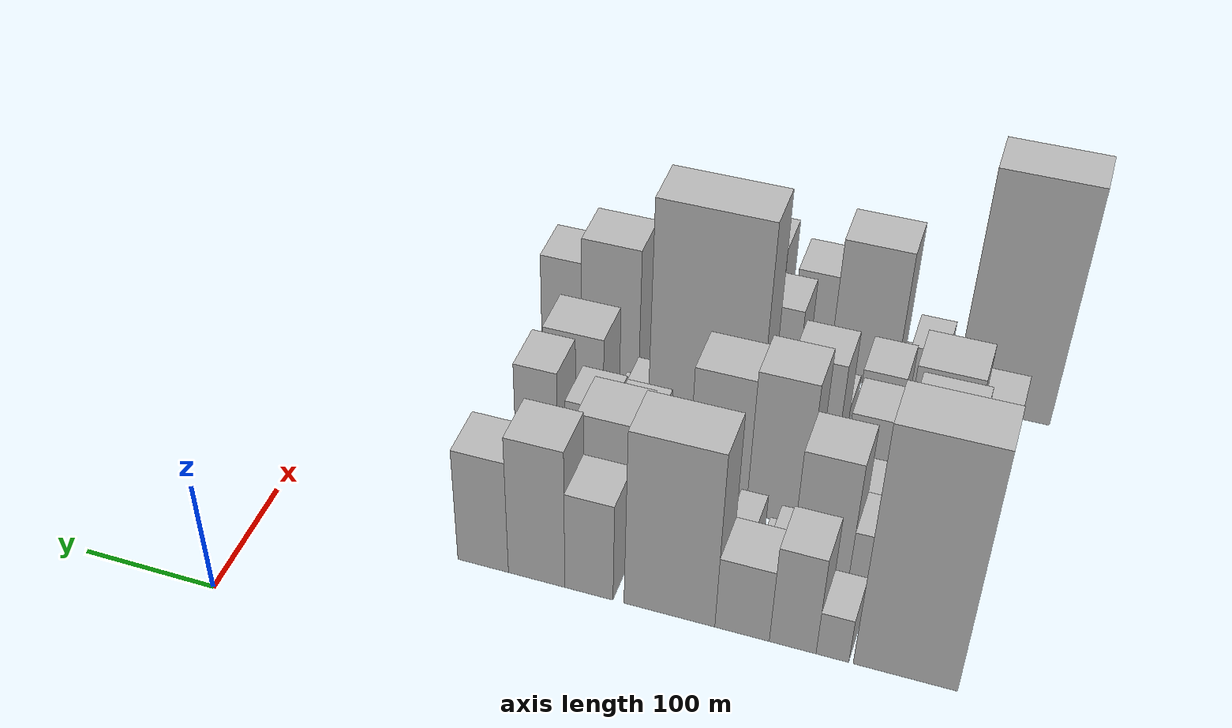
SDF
<sdf version="1.6">
 <world name="default">
  <model name="building_10">
   <static>1</static>
   <pose>100.0000 -470.8362 0 0.000000 0.000000 0.000000</pose>
   <link name="link">
    <pose>0 0 111.00 0 0 0</pose>
    <collision name="collision"><geometry><box><size>40.0000 70.0803 222.0000</size></box></geometry></collision>
    <visual name="visual">
     <cast_shadows>0</cast_shadows>
     <geometry><box><size>40.0000 70.0803 222.0000</size></box></geometry>
     <material>
      <script>
       <uri>model://HANNAS_wall/materials/scripts</uri>
       <uri>model://HANNAS_wall/materials/textures</uri>
       <name>vrc/HANNAS_wall</name>
      </script>
     </material>
    </visual>
   </link>
  </model>
  <model name="building_11">
   <static>1</static>
   <pose>100.0000 -421.5764 0 0.000000 0.000000 0.000000</pose>
   <link name="link">
    <pose>0 0 21.00 0 0 0</pose>
    <collision name="collision"><geometry><box><size>40.0000 22.4394 42.0000</size></box></geometry></collision>
    <visual name="visual">
     <cast_shadows>0</cast_shadows>
     <geometry><box><size>40.0000 22.4394 42.0000</size></box></geometry>
     <material>
      <script>
       <uri>model://HANNAS_wall/materials/scripts</uri>
       <uri>model://HANNAS_wall/materials/textures</uri>
       <name>vrc/HANNAS_wall</name>
      </script>
     </material>
    </visual>
   </link>
  </model>
  <model name="building_12">
   <static>1</static>
   <pose>100.0000 -394.1800 0 0.000000 0.000000 0.000000</pose>
   <link name="link">
    <pose>0 0 46.50 0 0 0</pose>
    <collision name="collision"><geometry><box><size>40.0000 32.3534 93.0000</size></box></geometry></collision>
    <visual name="visual">
     <cast_shadows>0</cast_shadows>
     <geometry><box><size>40.0000 32.3534 93.0000</size></box></geometry>
     <material>
      <script>
       <uri>model://HANNAS_wall/materials/scripts</uri>
       <uri>model://HANNAS_wall/materials/textures</uri>
       <name>vrc/HANNAS_wall</name>
      </script>
     </material>
    </visual>
   </link>
  </model>
  <model name="building_13">
   <static>1</static>
   <pose>100.0000 -358.8857 0 0.000000 0.000000 0.000000</pose>
   <link name="link">
    <pose>0 0 34.50 0 0 0</pose>
    <collision name="collision"><geometry><box><size>40.0000 38.2353 69.0000</size></box></geometry></collision>
    <visual name="visual">
     <cast_shadows>0</cast_shadows>
     <geometry><box><size>40.0000 38.2353 69.0000</size></box></geometry>
     <material>
      <script>
       <uri>model://HANNAS_wall/materials/scripts</uri>
       <uri>model://HANNAS_wall/materials/textures</uri>
       <name>vrc/HANNAS_wall</name>
      </script>
     </material>
    </visual>
   </link>
  </model>
  <model name="building_14">
   <static>1</static>
   <pose>100.0000 -307.2008 0 0.000000 0.000000 0.000000</pose>
   <link name="link">
    <pose>0 0 82.50 0 0 0</pose>
    <collision name="collision"><geometry><box><size>40.0000 65.1345 165.0000</size></box></geometry></collision>
    <visual name="visual">
     <cast_shadows>0</cast_shadows>
     <geometry><box><size>40.0000 65.1345 165.0000</size></box></geometry>
     <material>
      <script>
       <uri>model://HANNAS_wall/materials/scripts</uri>
       <uri>model://HANNAS_wall/materials/textures</uri>
       <name>vrc/HANNAS_wall</name>
      </script>
     </material>
    </visual>
   </link>
  </model>
  <model name="building_15">
   <static>1</static>
   <pose>100.0000 -248.9841 0 0.000000 0.000000 0.000000</pose>
   <link name="link">
    <pose>0 0 46.50 0 0 0</pose>
    <collision name="collision"><geometry><box><size>40.0000 35.2989 93.0000</size></box></geometry></collision>
    <visual name="visual">
     <cast_shadows>0</cast_shadows>
     <geometry><box><size>40.0000 35.2989 93.0000</size></box></geometry>
     <material>
      <script>
       <uri>model://HANNAS_wall/materials/scripts</uri>
       <uri>model://HANNAS_wall/materials/textures</uri>
       <name>vrc/HANNAS_wall</name>
      </script>
     </material>
    </visual>
   </link>
  </model>
  <model name="building_16">
   <static>1</static>
   <pose>100.0000 -210.3302 0 0.000000 0.000000 0.000000</pose>
   <link name="link">
    <pose>0 0 66.00 0 0 0</pose>
    <collision name="collision"><geometry><box><size>40.0000 42.0089 132.0000</size></box></geometry></collision>
    <visual name="visual">
     <cast_shadows>0</cast_shadows>
     <geometry><box><size>40.0000 42.0089 132.0000</size></box></geometry>
     <material>
      <script>
       <uri>model://HANNAS_wall/materials/scripts</uri>
       <uri>model://HANNAS_wall/materials/textures</uri>
       <name>vrc/HANNAS_wall</name>
      </script>
     </material>
    </visual>
   </link>
  </model>
  <model name="building_17">
   <static>1</static>
   <pose>100.0000 -170.2096 0 0.000000 0.000000 0.000000</pose>
   <link name="link">
    <pose>0 0 54.00 0 0 0</pose>
    <collision name="collision"><geometry><box><size>40.0000 38.2323 108.0000</size></box></geometry></collision>
    <visual name="visual">
     <cast_shadows>0</cast_shadows>
     <geometry><box><size>40.0000 38.2323 108.0000</size></box></geometry>
     <material>
      <script>
       <uri>model://HANNAS_wall/materials/scripts</uri>
       <uri>model://HANNAS_wall/materials/textures</uri>
       <name>vrc/HANNAS_wall</name>
      </script>
     </material>
    </visual>
   </link>
  </model>
  <model name="building_56">
   <static>1</static>
   <pose>155.0000 -468.3659 0 0.000000 0.000000 0.000000</pose>
   <link name="link">
    <pose>0 0 30.00 0 0 0</pose>
    <collision name="collision"><geometry><box><size>40.0000 32.1312 60.0000</size></box></geometry></collision>
    <visual name="visual">
     <cast_shadows>0</cast_shadows>
     <geometry><box><size>40.0000 32.1312 60.0000</size></box></geometry>
     <material>
      <script>
       <uri>model://HANNAS_wall/materials/scripts</uri>
       <uri>model://HANNAS_wall/materials/textures</uri>
       <name>vrc/HANNAS_wall</name>
      </script>
     </material>
    </visual>
   </link>
  </model>
  <model name="building_57">
   <static>1</static>
   <pose>155.0000 -435.2672 0 0.000000 0.000000 0.000000</pose>
   <link name="link">
    <pose>0 0 33.00 0 0 0</pose>
    <collision name="collision"><geometry><box><size>40.0000 34.0661 66.0000</size></box></geometry></collision>
    <visual name="visual">
     <cast_shadows>0</cast_shadows>
     <geometry><box><size>40.0000 34.0661 66.0000</size></box></geometry>
     <material>
      <script>
       <uri>model://HANNAS_wall/materials/scripts</uri>
       <uri>model://HANNAS_wall/materials/textures</uri>
       <name>vrc/HANNAS_wall</name>
      </script>
     </material>
    </visual>
   </link>
  </model>
  <model name="building_58">
   <static>1</static>
   <pose>155.0000 -397.9051 0 0.000000 0.000000 0.000000</pose>
   <link name="link">
    <pose>0 0 64.50 0 0 0</pose>
    <collision name="collision"><geometry><box><size>40.0000 40.6582 129.0000</size></box></geometry></collision>
    <visual name="visual">
     <cast_shadows>0</cast_shadows>
     <geometry><box><size>40.0000 40.6582 129.0000</size></box></geometry>
     <material>
      <script>
       <uri>model://HANNAS_wall/materials/scripts</uri>
       <uri>model://HANNAS_wall/materials/textures</uri>
       <name>vrc/HANNAS_wall</name>
      </script>
     </material>
    </visual>
   </link>
  </model>
  <model name="building_59">
   <static>1</static>
   <pose>155.0000 -368.8836 0 0.000000 0.000000 0.000000</pose>
   <link name="link">
    <pose>0 0 16.50 0 0 0</pose>
    <collision name="collision"><geometry><box><size>40.0000 17.3847 33.0000</size></box></geometry></collision>
    <visual name="visual">
     <cast_shadows>0</cast_shadows>
     <geometry><box><size>40.0000 17.3847 33.0000</size></box></geometry>
     <material>
      <script>
       <uri>model://HANNAS_wall/materials/scripts</uri>
       <uri>model://HANNAS_wall/materials/textures</uri>
       <name>vrc/HANNAS_wall</name>
      </script>
     </material>
    </visual>
   </link>
  </model>
  <model name="building_60">
   <static>1</static>
   <pose>155.0000 -356.5489 0 0.000000 0.000000 0.000000</pose>
   <link name="link">
    <pose>0 0 9.00 0 0 0</pose>
    <collision name="collision"><geometry><box><size>40.0000 7.2847 18.0000</size></box></geometry></collision>
    <visual name="visual">
     <cast_shadows>0</cast_shadows>
     <geometry><box><size>40.0000 7.2847 18.0000</size></box></geometry>
     <material>
      <script>
       <uri>model://HANNAS_wall/materials/scripts</uri>
       <uri>model://HANNAS_wall/materials/textures</uri>
       <name>vrc/HANNAS_wall</name>
      </script>
     </material>
    </visual>
   </link>
  </model>
  <model name="building_61">
   <static>1</static>
   <pose>155.0000 -340.0556 0 0.000000 0.000000 0.000000</pose>
   <link name="link">
    <pose>0 0 19.50 0 0 0</pose>
    <collision name="collision"><geometry><box><size>40.0000 19.7020 39.0000</size></box></geometry></collision>
    <visual name="visual">
     <cast_shadows>0</cast_shadows>
     <geometry><box><size>40.0000 19.7020 39.0000</size></box></geometry>
     <material>
      <script>
       <uri>model://HANNAS_wall/materials/scripts</uri>
       <uri>model://HANNAS_wall/materials/textures</uri>
       <name>vrc/HANNAS_wall</name>
      </script>
     </material>
    </visual>
   </link>
  </model>
  <model name="building_62">
   <static>1</static>
   <pose>155.0000 -321.5133 0 0.000000 0.000000 0.000000</pose>
   <link name="link">
    <pose>0 0 16.50 0 0 0</pose>
    <collision name="collision"><geometry><box><size>40.0000 17.3825 33.0000</size></box></geometry></collision>
    <visual name="visual">
     <cast_shadows>0</cast_shadows>
     <geometry><box><size>40.0000 17.3825 33.0000</size></box></geometry>
     <material>
      <script>
       <uri>model://HANNAS_wall/materials/scripts</uri>
       <uri>model://HANNAS_wall/materials/textures</uri>
       <name>vrc/HANNAS_wall</name>
      </script>
     </material>
    </visual>
   </link>
  </model>
  <model name="building_63">
   <static>1</static>
   <pose>155.0000 -309.8123 0 0.000000 0.000000 0.000000</pose>
   <link name="link">
    <pose>0 0 7.50 0 0 0</pose>
    <collision name="collision"><geometry><box><size>40.0000 6.0196 15.0000</size></box></geometry></collision>
    <visual name="visual">
     <cast_shadows>0</cast_shadows>
     <geometry><box><size>40.0000 6.0196 15.0000</size></box></geometry>
     <material>
      <script>
       <uri>model://HANNAS_wall/materials/scripts</uri>
       <uri>model://HANNAS_wall/materials/textures</uri>
       <name>vrc/HANNAS_wall</name>
      </script>
     </material>
    </visual>
   </link>
  </model>
  <model name="building_64">
   <static>1</static>
   <pose>155.0000 -286.1898 0 0.000000 0.000000 0.000000</pose>
   <link name="link">
    <pose>0 0 37.50 0 0 0</pose>
    <collision name="collision"><geometry><box><size>40.0000 41.2254 75.0000</size></box></geometry></collision>
    <visual name="visual">
     <cast_shadows>0</cast_shadows>
     <geometry><box><size>40.0000 41.2254 75.0000</size></box></geometry>
     <material>
      <script>
       <uri>model://HANNAS_wall/materials/scripts</uri>
       <uri>model://HANNAS_wall/materials/textures</uri>
       <name>vrc/HANNAS_wall</name>
      </script>
     </material>
    </visual>
   </link>
  </model>
  <model name="building_65">
   <static>1</static>
   <pose>155.0000 -243.1755 0 0.000000 0.000000 0.000000</pose>
   <link name="link">
    <pose>0 0 57.00 0 0 0</pose>
    <collision name="collision"><geometry><box><size>40.0000 44.8031 114.0000</size></box></geometry></collision>
    <visual name="visual">
     <cast_shadows>0</cast_shadows>
     <geometry><box><size>40.0000 44.8031 114.0000</size></box></geometry>
     <material>
      <script>
       <uri>model://HANNAS_wall/materials/scripts</uri>
       <uri>model://HANNAS_wall/materials/textures</uri>
       <name>vrc/HANNAS_wall</name>
      </script>
     </material>
    </visual>
   </link>
  </model>
  <model name="building_66">
   <static>1</static>
   <pose>155.0000 -212.9853 0 0.000000 0.000000 0.000000</pose>
   <link name="link">
    <pose>0 0 15.00 0 0 0</pose>
    <collision name="collision"><geometry><box><size>40.0000 15.5773 30.0000</size></box></geometry></collision>
    <visual name="visual">
     <cast_shadows>0</cast_shadows>
     <geometry><box><size>40.0000 15.5773 30.0000</size></box></geometry>
     <material>
      <script>
       <uri>model://HANNAS_wall/materials/scripts</uri>
       <uri>model://HANNAS_wall/materials/textures</uri>
       <name>vrc/HANNAS_wall</name>
      </script>
     </material>
    </visual>
   </link>
  </model>
  <model name="building_67">
   <static>1</static>
   <pose>155.0000 -189.4821 0 0.000000 0.000000 0.000000</pose>
   <link name="link">
    <pose>0 0 30.00 0 0 0</pose>
    <collision name="collision"><geometry><box><size>40.0000 31.4292 60.0000</size></box></geometry></collision>
    <visual name="visual">
     <cast_shadows>0</cast_shadows>
     <geometry><box><size>40.0000 31.4292 60.0000</size></box></geometry>
     <material>
      <script>
       <uri>model://HANNAS_wall/materials/scripts</uri>
       <uri>model://HANNAS_wall/materials/textures</uri>
       <name>vrc/HANNAS_wall</name>
      </script>
     </material>
    </visual>
   </link>
  </model>
  <model name="building_68">
   <static>1</static>
   <pose>155.0000 -163.1522 0 0.000000 0.000000 0.000000</pose>
   <link name="link">
    <pose>0 0 21.00 0 0 0</pose>
    <collision name="collision"><geometry><box><size>40.0000 21.2305 42.0000</size></box></geometry></collision>
    <visual name="visual">
     <cast_shadows>0</cast_shadows>
     <geometry><box><size>40.0000 21.2305 42.0000</size></box></geometry>
     <material>
      <script>
       <uri>model://HANNAS_wall/materials/scripts</uri>
       <uri>model://HANNAS_wall/materials/textures</uri>
       <name>vrc/HANNAS_wall</name>
      </script>
     </material>
    </visual>
   </link>
  </model>
  <model name="building_112">
   <static>1</static>
   <pose>210.0000 -460.0240 0 0.000000 0.000000 0.000000</pose>
   <link name="link">
    <pose>0 0 67.50 0 0 0</pose>
    <collision name="collision"><geometry><box><size>40.0000 47.0819 135.0000</size></box></geometry></collision>
    <visual name="visual">
     <cast_shadows>0</cast_shadows>
     <geometry><box><size>40.0000 47.0819 135.0000</size></box></geometry>
     <material>
      <script>
       <uri>model://HANNAS_wall/materials/scripts</uri>
       <uri>model://HANNAS_wall/materials/textures</uri>
       <name>vrc/HANNAS_wall</name>
      </script>
     </material>
    </visual>
   </link>
  </model>
  <model name="building_113">
   <static>1</static>
   <pose>210.0000 -424.2575 0 0.000000 0.000000 0.000000</pose>
   <link name="link">
    <pose>0 0 22.50 0 0 0</pose>
    <collision name="collision"><geometry><box><size>40.0000 24.4511 45.0000</size></box></geometry></collision>
    <visual name="visual">
     <cast_shadows>0</cast_shadows>
     <geometry><box><size>40.0000 24.4511 45.0000</size></box></geometry>
     <material>
      <script>
       <uri>model://HANNAS_wall/materials/scripts</uri>
       <uri>model://HANNAS_wall/materials/textures</uri>
       <name>vrc/HANNAS_wall</name>
      </script>
     </material>
    </visual>
   </link>
  </model>
  <model name="building_114">
   <static>1</static>
   <pose>210.0000 -398.5468 0 0.000000 0.000000 0.000000</pose>
   <link name="link">
    <pose>0 0 24.00 0 0 0</pose>
    <collision name="collision"><geometry><box><size>40.0000 26.9703 48.0000</size></box></geometry></collision>
    <visual name="visual">
     <cast_shadows>0</cast_shadows>
     <geometry><box><size>40.0000 26.9703 48.0000</size></box></geometry>
     <material>
      <script>
       <uri>model://HANNAS_wall/materials/scripts</uri>
       <uri>model://HANNAS_wall/materials/textures</uri>
       <name>vrc/HANNAS_wall</name>
      </script>
     </material>
    </visual>
   </link>
  </model>
  <model name="building_115">
   <static>1</static>
   <pose>210.0000 -353.4570 0 0.000000 0.000000 0.000000</pose>
   <link name="link">
    <pose>0 0 69.00 0 0 0</pose>
    <collision name="collision"><geometry><box><size>40.0000 43.2093 138.0000</size></box></geometry></collision>
    <visual name="visual">
     <cast_shadows>0</cast_shadows>
     <geometry><box><size>40.0000 43.2093 138.0000</size></box></geometry>
     <material>
      <script>
       <uri>model://HANNAS_wall/materials/scripts</uri>
       <uri>model://HANNAS_wall/materials/textures</uri>
       <name>vrc/HANNAS_wall</name>
      </script>
     </material>
    </visual>
   </link>
  </model>
  <model name="building_116">
   <static>1</static>
   <pose>210.0000 -309.7563 0 0.000000 0.000000 0.000000</pose>
   <link name="link">
    <pose>0 0 64.50 0 0 0</pose>
    <collision name="collision"><geometry><box><size>40.0000 44.1921 129.0000</size></box></geometry></collision>
    <visual name="visual">
     <cast_shadows>0</cast_shadows>
     <geometry><box><size>40.0000 44.1921 129.0000</size></box></geometry>
     <material>
      <script>
       <uri>model://HANNAS_wall/materials/scripts</uri>
       <uri>model://HANNAS_wall/materials/textures</uri>
       <name>vrc/HANNAS_wall</name>
      </script>
     </material>
    </visual>
   </link>
  </model>
  <model name="building_117">
   <static>1</static>
   <pose>210.0000 -283.8407 0 0.000000 0.000000 0.000000</pose>
   <link name="link">
    <pose>0 0 9.00 0 0 0</pose>
    <collision name="collision"><geometry><box><size>40.0000 7.6391 18.0000</size></box></geometry></collision>
    <visual name="visual">
     <cast_shadows>0</cast_shadows>
     <geometry><box><size>40.0000 7.6391 18.0000</size></box></geometry>
     <material>
      <script>
       <uri>model://HANNAS_wall/materials/scripts</uri>
       <uri>model://HANNAS_wall/materials/textures</uri>
       <name>vrc/HANNAS_wall</name>
      </script>
     </material>
    </visual>
   </link>
  </model>
  <model name="building_118">
   <static>1</static>
   <pose>210.0000 -265.9255 0 0.000000 0.000000 0.000000</pose>
   <link name="link">
    <pose>0 0 9.00 0 0 0</pose>
    <collision name="collision"><geometry><box><size>40.0000 8.1911 18.0000</size></box></geometry></collision>
    <visual name="visual">
     <cast_shadows>0</cast_shadows>
     <geometry><box><size>40.0000 8.1911 18.0000</size></box></geometry>
     <material>
      <script>
       <uri>model://HANNAS_wall/materials/scripts</uri>
       <uri>model://HANNAS_wall/materials/textures</uri>
       <name>vrc/HANNAS_wall</name>
      </script>
     </material>
    </visual>
   </link>
  </model>
  <model name="building_119">
   <static>1</static>
   <pose>210.0000 -244.5932 0 0.000000 0.000000 0.000000</pose>
   <link name="link">
    <pose>0 0 33.00 0 0 0</pose>
    <collision name="collision"><geometry><box><size>40.0000 34.4735 66.0000</size></box></geometry></collision>
    <visual name="visual">
     <cast_shadows>0</cast_shadows>
     <geometry><box><size>40.0000 34.4735 66.0000</size></box></geometry>
     <material>
      <script>
       <uri>model://HANNAS_wall/materials/scripts</uri>
       <uri>model://HANNAS_wall/materials/textures</uri>
       <name>vrc/HANNAS_wall</name>
      </script>
     </material>
    </visual>
   </link>
  </model>
  <model name="building_120">
   <static>1</static>
   <pose>210.0000 -210.0786 0 0.000000 0.000000 0.000000</pose>
   <link name="link">
    <pose>0 0 34.50 0 0 0</pose>
    <collision name="collision"><geometry><box><size>40.0000 34.5557 69.0000</size></box></geometry></collision>
    <visual name="visual">
     <cast_shadows>0</cast_shadows>
     <geometry><box><size>40.0000 34.5557 69.0000</size></box></geometry>
     <material>
      <script>
       <uri>model://HANNAS_wall/materials/scripts</uri>
       <uri>model://HANNAS_wall/materials/textures</uri>
       <name>vrc/HANNAS_wall</name>
      </script>
     </material>
    </visual>
   </link>
  </model>
  <model name="building_121">
   <static>1</static>
   <pose>210.0000 -170.1714 0 0.000000 0.000000 0.000000</pose>
   <link name="link">
    <pose>0 0 46.50 0 0 0</pose>
    <collision name="collision"><geometry><box><size>40.0000 33.2586 93.0000</size></box></geometry></collision>
    <visual name="visual">
     <cast_shadows>0</cast_shadows>
     <geometry><box><size>40.0000 33.2586 93.0000</size></box></geometry>
     <material>
      <script>
       <uri>model://HANNAS_wall/materials/scripts</uri>
       <uri>model://HANNAS_wall/materials/textures</uri>
       <name>vrc/HANNAS_wall</name>
      </script>
     </material>
    </visual>
   </link>
  </model>
  <model name="building_164">
   <static>1</static>
   <pose>265.0000 -454.4694 0 0.000000 0.000000 0.000000</pose>
   <link name="link">
    <pose>0 0 63.00 0 0 0</pose>
    <collision name="collision"><geometry><box><size>40.0000 47.6121 126.0000</size></box></geometry></collision>
    <visual name="visual">
     <cast_shadows>0</cast_shadows>
     <geometry><box><size>40.0000 47.6121 126.0000</size></box></geometry>
     <material>
      <script>
       <uri>model://HANNAS_wall/materials/scripts</uri>
       <uri>model://HANNAS_wall/materials/textures</uri>
       <name>vrc/HANNAS_wall</name>
      </script>
     </material>
    </visual>
   </link>
  </model>
  <model name="building_165">
   <static>1</static>
   <pose>265.0000 -410.8296 0 0.000000 0.000000 0.000000</pose>
   <link name="link">
    <pose>0 0 34.50 0 0 0</pose>
    <collision name="collision"><geometry><box><size>40.0000 39.6673 69.0000</size></box></geometry></collision>
    <visual name="visual">
     <cast_shadows>0</cast_shadows>
     <geometry><box><size>40.0000 39.6673 69.0000</size></box></geometry>
     <material>
      <script>
       <uri>model://HANNAS_wall/materials/scripts</uri>
       <uri>model://HANNAS_wall/materials/textures</uri>
       <name>vrc/HANNAS_wall</name>
      </script>
     </material>
    </visual>
   </link>
  </model>
  <model name="building_166">
   <static>1</static>
   <pose>265.0000 -364.2346 0 0.000000 0.000000 0.000000</pose>
   <link name="link">
    <pose>0 0 55.50 0 0 0</pose>
    <collision name="collision"><geometry><box><size>40.0000 39.5228 111.0000</size></box></geometry></collision>
    <visual name="visual">
     <cast_shadows>0</cast_shadows>
     <geometry><box><size>40.0000 39.5228 111.0000</size></box></geometry>
     <material>
      <script>
       <uri>model://HANNAS_wall/materials/scripts</uri>
       <uri>model://HANNAS_wall/materials/textures</uri>
       <name>vrc/HANNAS_wall</name>
      </script>
     </material>
    </visual>
   </link>
  </model>
  <model name="building_167">
   <static>1</static>
   <pose>265.0000 -334.8420 0 0.000000 0.000000 0.000000</pose>
   <link name="link">
    <pose>0 0 18.00 0 0 0</pose>
    <collision name="collision"><geometry><box><size>40.0000 19.2624 36.0000</size></box></geometry></collision>
    <visual name="visual">
     <cast_shadows>0</cast_shadows>
     <geometry><box><size>40.0000 19.2624 36.0000</size></box></geometry>
     <material>
      <script>
       <uri>model://HANNAS_wall/materials/scripts</uri>
       <uri>model://HANNAS_wall/materials/textures</uri>
       <name>vrc/HANNAS_wall</name>
      </script>
     </material>
    </visual>
   </link>
  </model>
  <model name="building_168">
   <static>1</static>
   <pose>265.0000 -282.2367 0 0.000000 0.000000 0.000000</pose>
   <link name="link">
    <pose>0 0 111.00 0 0 0</pose>
    <collision name="collision"><geometry><box><size>40.0000 85.9481 222.0000</size></box></geometry></collision>
    <visual name="visual">
     <cast_shadows>0</cast_shadows>
     <geometry><box><size>40.0000 85.9481 222.0000</size></box></geometry>
     <material>
      <script>
       <uri>model://HANNAS_wall/materials/scripts</uri>
       <uri>model://HANNAS_wall/materials/textures</uri>
       <name>vrc/HANNAS_wall</name>
      </script>
     </material>
    </visual>
   </link>
  </model>
  <model name="building_169">
   <static>1</static>
   <pose>265.0000 -229.0171 0 0.000000 0.000000 0.000000</pose>
   <link name="link">
    <pose>0 0 19.50 0 0 0</pose>
    <collision name="collision"><geometry><box><size>40.0000 20.4911 39.0000</size></box></geometry></collision>
    <visual name="visual">
     <cast_shadows>0</cast_shadows>
     <geometry><box><size>40.0000 20.4911 39.0000</size></box></geometry>
     <material>
      <script>
       <uri>model://HANNAS_wall/materials/scripts</uri>
       <uri>model://HANNAS_wall/materials/textures</uri>
       <name>vrc/HANNAS_wall</name>
      </script>
     </material>
    </visual>
   </link>
  </model>
  <model name="building_170">
   <static>1</static>
   <pose>265.0000 -214.2909 0 0.000000 0.000000 0.000000</pose>
   <link name="link">
    <pose>0 0 10.50 0 0 0</pose>
    <collision name="collision"><geometry><box><size>40.0000 8.9614 21.0000</size></box></geometry></collision>
    <visual name="visual">
     <cast_shadows>0</cast_shadows>
     <geometry><box><size>40.0000 8.9614 21.0000</size></box></geometry>
     <material>
      <script>
       <uri>model://HANNAS_wall/materials/scripts</uri>
       <uri>model://HANNAS_wall/materials/textures</uri>
       <name>vrc/HANNAS_wall</name>
      </script>
     </material>
    </visual>
   </link>
  </model>
  <model name="building_171">
   <static>1</static>
   <pose>265.0000 -179.7488 0 0.000000 0.000000 0.000000</pose>
   <link name="link">
    <pose>0 0 42.00 0 0 0</pose>
    <collision name="collision"><geometry><box><size>40.0000 48.1229 84.0000</size></box></geometry></collision>
    <visual name="visual">
     <cast_shadows>0</cast_shadows>
     <geometry><box><size>40.0000 48.1229 84.0000</size></box></geometry>
     <material>
      <script>
       <uri>model://HANNAS_wall/materials/scripts</uri>
       <uri>model://HANNAS_wall/materials/textures</uri>
       <name>vrc/HANNAS_wall</name>
      </script>
     </material>
    </visual>
   </link>
  </model>
  <model name="building_216">
   <static>1</static>
   <pose>320.0000 -490.4803 0 0.000000 0.000000 0.000000</pose>
   <link name="link">
    <pose>0 0 28.50 0 0 0</pose>
    <collision name="collision"><geometry><box><size>40.0000 31.0288 57.0000</size></box></geometry></collision>
    <visual name="visual">
     <cast_shadows>0</cast_shadows>
     <geometry><box><size>40.0000 31.0288 57.0000</size></box></geometry>
     <material>
      <script>
       <uri>model://HANNAS_wall/materials/scripts</uri>
       <uri>model://HANNAS_wall/materials/textures</uri>
       <name>vrc/HANNAS_wall</name>
      </script>
     </material>
    </visual>
   </link>
  </model>
  <model name="building_217">
   <static>1</static>
   <pose>320.0000 -447.3682 0 0.000000 0.000000 0.000000</pose>
   <link name="link">
    <pose>0 0 39.00 0 0 0</pose>
    <collision name="collision"><geometry><box><size>40.0000 41.1954 78.0000</size></box></geometry></collision>
    <visual name="visual">
     <cast_shadows>0</cast_shadows>
     <geometry><box><size>40.0000 41.1954 78.0000</size></box></geometry>
     <material>
      <script>
       <uri>model://HANNAS_wall/materials/scripts</uri>
       <uri>model://HANNAS_wall/materials/textures</uri>
       <name>vrc/HANNAS_wall</name>
      </script>
     </material>
    </visual>
   </link>
  </model>
  <model name="building_218">
   <static>1</static>
   <pose>320.0000 -404.3608 0 0.000000 0.000000 0.000000</pose>
   <link name="link">
    <pose>0 0 31.50 0 0 0</pose>
    <collision name="collision"><geometry><box><size>40.0000 32.8193 63.0000</size></box></geometry></collision>
    <visual name="visual">
     <cast_shadows>0</cast_shadows>
     <geometry><box><size>40.0000 32.8193 63.0000</size></box></geometry>
     <material>
      <script>
       <uri>model://HANNAS_wall/materials/scripts</uri>
       <uri>model://HANNAS_wall/materials/textures</uri>
       <name>vrc/HANNAS_wall</name>
      </script>
     </material>
    </visual>
   </link>
  </model>
  <model name="building_219">
   <static>1</static>
   <pose>320.0000 -377.4186 0 0.000000 0.000000 0.000000</pose>
   <link name="link">
    <pose>0 0 10.50 0 0 0</pose>
    <collision name="collision"><geometry><box><size>40.0000 9.0652 21.0000</size></box></geometry></collision>
    <visual name="visual">
     <cast_shadows>0</cast_shadows>
     <geometry><box><size>40.0000 9.0652 21.0000</size></box></geometry>
     <material>
      <script>
       <uri>model://HANNAS_wall/materials/scripts</uri>
       <uri>model://HANNAS_wall/materials/textures</uri>
       <name>vrc/HANNAS_wall</name>
      </script>
     </material>
    </visual>
   </link>
  </model>
  <model name="building_220">
   <static>1</static>
   <pose>320.0000 -356.3905 0 0.000000 0.000000 0.000000</pose>
   <link name="link">
    <pose>0 0 28.50 0 0 0</pose>
    <collision name="collision"><geometry><box><size>40.0000 32.9910 57.0000</size></box></geometry></collision>
    <visual name="visual">
     <cast_shadows>0</cast_shadows>
     <geometry><box><size>40.0000 32.9910 57.0000</size></box></geometry>
     <material>
      <script>
       <uri>model://HANNAS_wall/materials/scripts</uri>
       <uri>model://HANNAS_wall/materials/textures</uri>
       <name>vrc/HANNAS_wall</name>
      </script>
     </material>
    </visual>
   </link>
  </model>
  <model name="building_221">
   <static>1</static>
   <pose>320.0000 -319.8094 0 0.000000 0.000000 0.000000</pose>
   <link name="link">
    <pose>0 0 52.50 0 0 0</pose>
    <collision name="collision"><geometry><box><size>40.0000 40.1712 105.0000</size></box></geometry></collision>
    <visual name="visual">
     <cast_shadows>0</cast_shadows>
     <geometry><box><size>40.0000 40.1712 105.0000</size></box></geometry>
     <material>
      <script>
       <uri>model://HANNAS_wall/materials/scripts</uri>
       <uri>model://HANNAS_wall/materials/textures</uri>
       <name>vrc/HANNAS_wall</name>
      </script>
     </material>
    </visual>
   </link>
  </model>
  <model name="building_222">
   <static>1</static>
   <pose>320.0000 -296.0395 0 0.000000 0.000000 0.000000</pose>
   <link name="link">
    <pose>0 0 9.00 0 0 0</pose>
    <collision name="collision"><geometry><box><size>40.0000 7.3687 18.0000</size></box></geometry></collision>
    <visual name="visual">
     <cast_shadows>0</cast_shadows>
     <geometry><box><size>40.0000 7.3687 18.0000</size></box></geometry>
     <material>
      <script>
       <uri>model://HANNAS_wall/materials/scripts</uri>
       <uri>model://HANNAS_wall/materials/textures</uri>
       <name>vrc/HANNAS_wall</name>
      </script>
     </material>
    </visual>
   </link>
  </model>
  <model name="building_223">
   <static>1</static>
   <pose>320.0000 -273.6734 0 0.000000 0.000000 0.000000</pose>
   <link name="link">
    <pose>0 0 16.50 0 0 0</pose>
    <collision name="collision"><geometry><box><size>40.0000 19.3634 33.0000</size></box></geometry></collision>
    <visual name="visual">
     <cast_shadows>0</cast_shadows>
     <geometry><box><size>40.0000 19.3634 33.0000</size></box></geometry>
     <material>
      <script>
       <uri>model://HANNAS_wall/materials/scripts</uri>
       <uri>model://HANNAS_wall/materials/textures</uri>
       <name>vrc/HANNAS_wall</name>
      </script>
     </material>
    </visual>
   </link>
  </model>
  <model name="building_224">
   <static>1</static>
   <pose>320.0000 -241.3626 0 0.000000 0.000000 0.000000</pose>
   <link name="link">
    <pose>0 0 52.50 0 0 0</pose>
    <collision name="collision"><geometry><box><size>40.0000 35.2582 105.0000</size></box></geometry></collision>
    <visual name="visual">
     <cast_shadows>0</cast_shadows>
     <geometry><box><size>40.0000 35.2582 105.0000</size></box></geometry>
     <material>
      <script>
       <uri>model://HANNAS_wall/materials/scripts</uri>
       <uri>model://HANNAS_wall/materials/textures</uri>
       <name>vrc/HANNAS_wall</name>
      </script>
     </material>
    </visual>
   </link>
  </model>
  <model name="building_225">
   <static>1</static>
   <pose>320.0000 -191.0510 0 0.000000 0.000000 0.000000</pose>
   <link name="link">
    <pose>0 0 64.50 0 0 0</pose>
    <collision name="collision"><geometry><box><size>40.0000 47.3650 129.0000</size></box></geometry></collision>
    <visual name="visual">
     <cast_shadows>0</cast_shadows>
     <geometry><box><size>40.0000 47.3650 129.0000</size></box></geometry>
     <material>
      <script>
       <uri>model://HANNAS_wall/materials/scripts</uri>
       <uri>model://HANNAS_wall/materials/textures</uri>
       <name>vrc/HANNAS_wall</name>
      </script>
     </material>
    </visual>
   </link>
  </model>
  <model name="building_226">
   <static>1</static>
   <pose>320.0000 -150.7673 0 0.000000 0.000000 0.000000</pose>
   <link name="link">
    <pose>0 0 52.50 0 0 0</pose>
    <collision name="collision"><geometry><box><size>40.0000 33.2023 105.0000</size></box></geometry></collision>
    <visual name="visual">
     <cast_shadows>0</cast_shadows>
     <geometry><box><size>40.0000 33.2023 105.0000</size></box></geometry>
     <material>
      <script>
       <uri>model://HANNAS_wall/materials/scripts</uri>
       <uri>model://HANNAS_wall/materials/textures</uri>
       <name>vrc/HANNAS_wall</name>
      </script>
     </material>
    </visual>
   </link>
  </model>
  <model name="building_266">
   <static>1</static>
   <pose>375.0000 -489.8076 0 0.000000 0.000000 0.000000</pose>
   <link name="link">
    <pose>0 0 111.00 0 0 0</pose>
    <collision name="collision"><geometry><box><size>40.0000 74.8047 222.0000</size></box></geometry></collision>
    <visual name="visual">
     <cast_shadows>0</cast_shadows>
     <geometry><box><size>40.0000 74.8047 222.0000</size></box></geometry>
     <material>
      <script>
       <uri>model://HANNAS_wall/materials/scripts</uri>
       <uri>model://HANNAS_wall/materials/textures</uri>
       <name>vrc/HANNAS_wall</name>
      </script>
     </material>
    </visual>
   </link>
  </model>
  <model name="building_267">
   <static>1</static>
   <pose>375.0000 -428.5274 0 0.000000 0.000000 0.000000</pose>
   <link name="link">
    <pose>0 0 24.00 0 0 0</pose>
    <collision name="collision"><geometry><box><size>40.0000 27.7558 48.0000</size></box></geometry></collision>
    <visual name="visual">
     <cast_shadows>0</cast_shadows>
     <geometry><box><size>40.0000 27.7558 48.0000</size></box></geometry>
     <material>
      <script>
       <uri>model://HANNAS_wall/materials/scripts</uri>
       <uri>model://HANNAS_wall/materials/textures</uri>
       <name>vrc/HANNAS_wall</name>
      </script>
     </material>
    </visual>
   </link>
  </model>
  <model name="building_268">
   <static>1</static>
   <pose>375.0000 -410.8281 0 0.000000 0.000000 0.000000</pose>
   <link name="link">
    <pose>0 0 9.00 0 0 0</pose>
    <collision name="collision"><geometry><box><size>40.0000 7.6429 18.0000</size></box></geometry></collision>
    <visual name="visual">
     <cast_shadows>0</cast_shadows>
     <geometry><box><size>40.0000 7.6429 18.0000</size></box></geometry>
     <material>
      <script>
       <uri>model://HANNAS_wall/materials/scripts</uri>
       <uri>model://HANNAS_wall/materials/textures</uri>
       <name>vrc/HANNAS_wall</name>
      </script>
     </material>
    </visual>
   </link>
  </model>
  <model name="building_269">
   <static>1</static>
   <pose>375.0000 -380.4605 0 0.000000 0.000000 0.000000</pose>
   <link name="link">
    <pose>0 0 67.50 0 0 0</pose>
    <collision name="collision"><geometry><box><size>40.0000 53.0924 135.0000</size></box></geometry></collision>
    <visual name="visual">
     <cast_shadows>0</cast_shadows>
     <geometry><box><size>40.0000 53.0924 135.0000</size></box></geometry>
     <material>
      <script>
       <uri>model://HANNAS_wall/materials/scripts</uri>
       <uri>model://HANNAS_wall/materials/textures</uri>
       <name>vrc/HANNAS_wall</name>
      </script>
     </material>
    </visual>
   </link>
  </model>
  <model name="building_270">
   <static>1</static>
   <pose>375.0000 -338.0746 0 0.000000 0.000000 0.000000</pose>
   <link name="link">
    <pose>0 0 49.50 0 0 0</pose>
    <collision name="collision"><geometry><box><size>40.0000 31.6793 99.0000</size></box></geometry></collision>
    <visual name="visual">
     <cast_shadows>0</cast_shadows>
     <geometry><box><size>40.0000 31.6793 99.0000</size></box></geometry>
     <material>
      <script>
       <uri>model://HANNAS_wall/materials/scripts</uri>
       <uri>model://HANNAS_wall/materials/textures</uri>
       <name>vrc/HANNAS_wall</name>
      </script>
     </material>
    </visual>
   </link>
  </model>
  <model name="building_271">
   <static>1</static>
   <pose>375.0000 -291.8462 0 0.000000 0.000000 0.000000</pose>
   <link name="link">
    <pose>0 0 57.00 0 0 0</pose>
    <collision name="collision"><geometry><box><size>40.0000 40.7775 114.0000</size></box></geometry></collision>
    <visual name="visual">
     <cast_shadows>0</cast_shadows>
     <geometry><box><size>40.0000 40.7775 114.0000</size></box></geometry>
     <material>
      <script>
       <uri>model://HANNAS_wall/materials/scripts</uri>
       <uri>model://HANNAS_wall/materials/textures</uri>
       <name>vrc/HANNAS_wall</name>
      </script>
     </material>
    </visual>
   </link>
  </model>
  <model name="building_272">
   <static>1</static>
   <pose>375.0000 -260.1310 0 0.000000 0.000000 0.000000</pose>
   <link name="link">
    <pose>0 0 21.00 0 0 0</pose>
    <collision name="collision"><geometry><box><size>40.0000 22.6528 42.0000</size></box></geometry></collision>
    <visual name="visual">
     <cast_shadows>0</cast_shadows>
     <geometry><box><size>40.0000 22.6528 42.0000</size></box></geometry>
     <material>
      <script>
       <uri>model://HANNAS_wall/materials/scripts</uri>
       <uri>model://HANNAS_wall/materials/textures</uri>
       <name>vrc/HANNAS_wall</name>
      </script>
     </material>
    </visual>
   </link>
  </model>
  <model name="building_273">
   <static>1</static>
   <pose>375.0000 -241.1205 0 0.000000 0.000000 0.000000</pose>
   <link name="link">
    <pose>0 0 9.00 0 0 0</pose>
    <collision name="collision"><geometry><box><size>40.0000 7.3683 18.0000</size></box></geometry></collision>
    <visual name="visual">
     <cast_shadows>0</cast_shadows>
     <geometry><box><size>40.0000 7.3683 18.0000</size></box></geometry>
     <material>
      <script>
       <uri>model://HANNAS_wall/materials/scripts</uri>
       <uri>model://HANNAS_wall/materials/textures</uri>
       <name>vrc/HANNAS_wall</name>
      </script>
     </material>
    </visual>
   </link>
  </model>
  <model name="building_274">
   <static>1</static>
   <pose>375.0000 -227.2049 0 0.000000 0.000000 0.000000</pose>
   <link name="link">
    <pose>0 0 19.50 0 0 0</pose>
    <collision name="collision"><geometry><box><size>40.0000 20.4630 39.0000</size></box></geometry></collision>
    <visual name="visual">
     <cast_shadows>0</cast_shadows>
     <geometry><box><size>40.0000 20.4630 39.0000</size></box></geometry>
     <material>
      <script>
       <uri>model://HANNAS_wall/materials/scripts</uri>
       <uri>model://HANNAS_wall/materials/textures</uri>
       <name>vrc/HANNAS_wall</name>
      </script>
     </material>
    </visual>
   </link>
  </model>
  <model name="building_275">
   <static>1</static>
   <pose>375.0000 -205.5278 0 0.000000 0.000000 0.000000</pose>
   <link name="link">
    <pose>0 0 13.50 0 0 0</pose>
    <collision name="collision"><geometry><box><size>40.0000 10.8911 27.0000</size></box></geometry></collision>
    <visual name="visual">
     <cast_shadows>0</cast_shadows>
     <geometry><box><size>40.0000 10.8911 27.0000</size></box></geometry>
     <material>
      <script>
       <uri>model://HANNAS_wall/materials/scripts</uri>
       <uri>model://HANNAS_wall/materials/textures</uri>
       <name>vrc/HANNAS_wall</name>
      </script>
     </material>
    </visual>
   </link>
  </model>
  <model name="building_276">
   <static>1</static>
   <pose>375.0000 -179.9740 0 0.000000 0.000000 0.000000</pose>
   <link name="link">
    <pose>0 0 36.00 0 0 0</pose>
    <collision name="collision"><geometry><box><size>40.0000 40.2165 72.0000</size></box></geometry></collision>
    <visual name="visual">
     <cast_shadows>0</cast_shadows>
     <geometry><box><size>40.0000 40.2165 72.0000</size></box></geometry>
     <material>
      <script>
       <uri>model://HANNAS_wall/materials/scripts</uri>
       <uri>model://HANNAS_wall/materials/textures</uri>
       <name>vrc/HANNAS_wall</name>
      </script>
     </material>
    </visual>
   </link>
  </model>
 </world>
</sdf>
